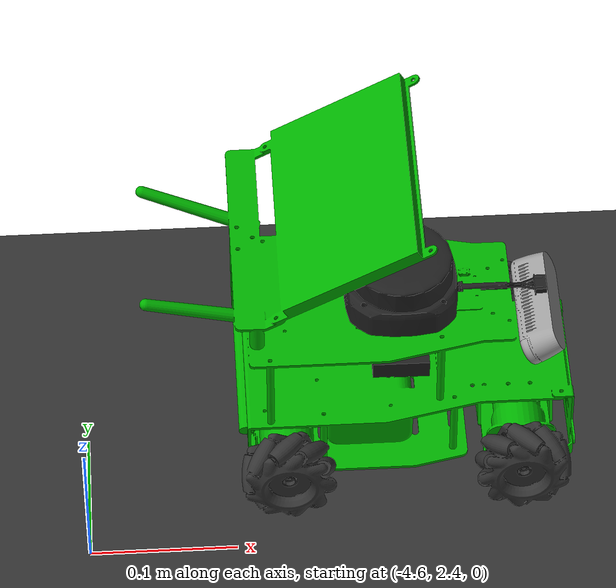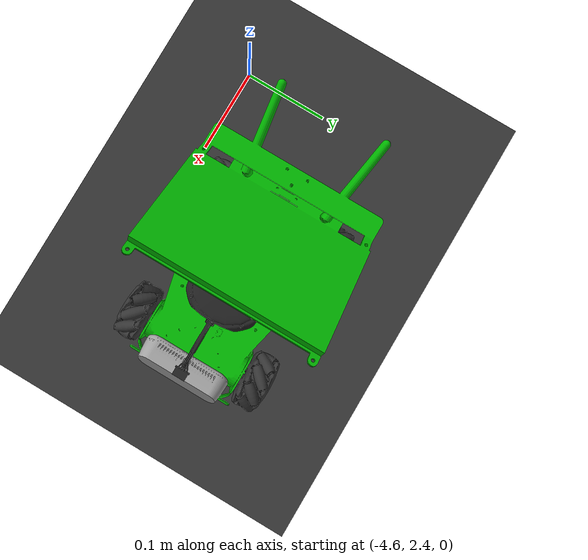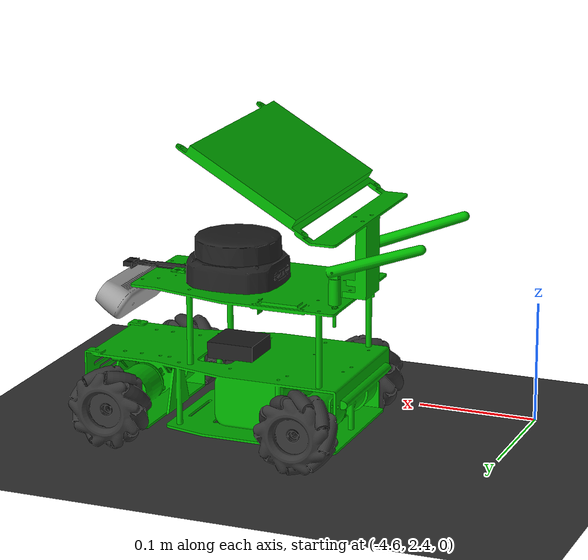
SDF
<sdf version="1.9">
 <world name="default">
  <model name="ground_plane">
   <static>true</static>
   <link name="link">
    <collision name="collision">
     <geometry><plane><normal>0 0 1</normal><size>10 10</size></plane></geometry>
    </collision>
    <visual name="visual">
     <geometry><plane><normal>0 0 1</normal><size>10 10</size></plane></geometry>
     <material>
      <ambient>0.2 0.2 0.2 1</ambient>
      <diffuse>0.2 0.2 0.2 1</diffuse>
      <specular>0.2 0.2 0.2 1</specular>
     </material>
    </visual>
    <inertial>
     <mass>1</mass>
     <inertia><ixx>1</ixx><ixy>0</ixy><ixz>0</ixz><iyy>1</iyy><iyz>0</iyz><izz>1</izz></inertia>
    </inertial>
   </link>
  </model>
  <model name="rosmaster_x3_1_1_1">
   <link name="base_footprint">
    <inertial>
     <pose>-0.02762684124386252 0 0.1368573036006547 0 0 0</pose>
     <mass>4.887999999999999</mass>
     <inertia>
      <ixx>0.02688366396477616</ixx>
      <ixy>0</ixy>
      <ixz>0.00075297530245550803</ixz>
      <iyy>0.052121897096815251</iyy>
      <iyz>0</iyz>
      <izz>0.047371939139955743</izz>
     </inertia>
    </inertial>
    <collision name="base_footprint_fixed_joint_lump__base_link_collision">
     <pose>-0.031 0 0.13925 0 0 0</pose>
     <geometry><box><size>0.3 0.1386 0.19725</size></box></geometry>
    </collision>
    <visual name="base_footprint_fixed_joint_lump__base_link_visual">
     <pose>0 0 0.0325 0 0 0</pose>
     <geometry>
      <mesh>
       <scale>1 1 1</scale>
       <uri>file:///home/mo/yahboom_ws/install/yahboom_rosmaster_description/share/yahboom_rosmaster_description/meshes/rosmaster_x3/visual/base_link_X3.STL</uri>
      </mesh>
     </geometry>
     <material><ambient>0 0.7 0 1</ambient><diffuse>0 0.7 0 1</diffuse><specular>0 0.7 0 1</specular></material>
    </visual>
    <visual name="base_footprint_fixed_joint_lump__cam_1_link_visual_1">
     <pose>0.105 0 0.0825 1.070796326794896 -5.551115123125783e-17 1.570796326794896</pose>
     <geometry>
      <mesh>
       <scale>1 1 1</scale>
       <uri>file:///home/mo/yahboom_ws/install/yahboom_rosmaster_description/share/yahboom_rosmaster_description/meshes/intel_realsense/visual/d435.stl</uri>
      </mesh>
     </geometry>
     <material><diffuse>0.625 0.625 0.625 1</diffuse><ambient>0.625 0.625 0.625 1</ambient></material>
    </visual>
    <visual name="base_footprint_fixed_joint_lump__imu_link_visual_2">
     <pose>0 0 0.0385 0 0 0</pose>
     <geometry><box><size>0.03899 0.03785 0.01338</size></box></geometry>
     <material><diffuse>0.125 0.125 0.125 1</diffuse><ambient>0.125 0.125 0.125 1</ambient></material>
    </visual>
    <visual name="base_footprint_fixed_joint_lump__laser_frame_visual_3">
     <pose>0 0 0.115 -1.570796326794896 0 0</pose>
     <geometry>
      <mesh>
       <scale>0.001 0.001 0.001</scale>
       <uri>file:///home/mo/yahboom_ws/install/yahboom_rosmaster_description/share/yahboom_rosmaster_description/meshes/rplidar/rplidar_s2.stl</uri>
      </mesh>
     </geometry>
     <material><diffuse>0.125 0.125 0.125 1</diffuse><ambient>0.125 0.125 0.125 1</ambient></material>
    </visual>
    <sensor name="cam_1" type="rgbd_camera">
     <camera>
      <horizontal_fov>1.5184</horizontal_fov>
      <image><width>424</width><height>240</height></image>
      <clip><near>0.050000000000000003</near><far>1.5</far></clip>
     </camera>
     <always_on>true</always_on>
     <topic>cam_1</topic>
     <update_rate>2</update_rate>
     <visualize>true</visualize>
     <pose>0.105 0 0.0825 0 -0.5 0</pose>
     <gz_frame_id>cam_1_depth_optical_frame</gz_frame_id>
    </sensor>
    <sensor name="imu_sensor" type="imu">
     <topic>imu/data</topic>
     <update_rate>15</update_rate>
     <always_on>true</always_on>
     <visualize>false</visualize>
     <pose>0 0 0.0385 0 -0 0</pose>
     <gz_frame_id>imu_link</gz_frame_id>
    </sensor>
    <sensor name="lidar_sensor" type="gpu_lidar">
     <topic>scan</topic>
     <update_rate>10</update_rate>
     <always_on>true</always_on>
     <visualize>false</visualize>
     <ray>
      <scan>
       <horizontal>
        <samples>720</samples>
        <resolution>1</resolution>
        <min_angle>-3.1415899999999999</min_angle>
        <max_angle>3.1415899999999999</max_angle>
       </horizontal>
       <vertical>
        <samples>1</samples>
        <resolution>1</resolution>
        <min_angle>0</min_angle>
        <max_angle>0</max_angle>
       </vertical>
      </scan>
      <range><min>0.20000000000000001</min><max>30</max><resolution>0.012999999999999999</resolution></range>
     </ray>
     <pose>0 0 0.115 0 -0 0</pose>
     <gz_frame_id>laser_frame</gz_frame_id>
    </sensor>
   </link>
   <joint name="back_left_wheel_joint" type="revolute">
    <pose relative_to="base_footprint">-0.08 0.07450000000000001 0 0 0 0</pose>
    <parent>base_footprint</parent>
    <child>back_left_wheel_link</child>
    <axis>
     <xyz>0 1 0</xyz>
     <limit><lower>-10000000000000000</lower><upper>10000000000000000</upper></limit>
     <dynamics><spring_reference>0</spring_reference><spring_stiffness>0</spring_stiffness></dynamics>
    </axis>
   </joint>
   <link name="back_left_wheel_link">
    <pose relative_to="back_left_wheel_joint">0 0 0 0 0 0</pose>
    <inertial>
     <mass>9.0999999999999996</mass>
     <inertia>
      <ixx>0.0031037900833333328</ixx>
      <ixy>0</ixy>
      <ixz>0</ixz>
      <iyy>0.0048059375000000003</iyy>
      <iyz>0</iyz>
      <izz>0.0031037900833333328</izz>
     </inertia>
    </inertial>
    <collision name="back_left_wheel_link_collision">
     <pose>0 0 0 1.570796326794896 0 0</pose>
     <geometry><cylinder><length>0.0304</length><radius>0.032500000000000001</radius></cylinder></geometry>
    </collision>
    <visual name="back_left_wheel_link_visual">
     <pose>0 0 0 1.570796326794896 0 0</pose>
     <geometry>
      <mesh>
       <scale>1 1 1</scale>
       <uri>file:///home/mo/yahboom_ws/install/yahboom_rosmaster_description/share/yahboom_rosmaster_description/meshes/rosmaster_x3/visual/back_left_wheel_X3.STL</uri>
      </mesh>
     </geometry>
     <material>
      <ambient>0.2 0.2 0.2 1</ambient>
      <diffuse>0.2 0.2 0.2 1</diffuse>
      <specular>0.2 0.2 0.2 1</specular>
      <emissive>0 0 0 0</emissive>
     </material>
    </visual>
    <surface><friction><ode><mu>1.0</mu><mu2>0.0</mu2></ode></friction></surface>
   </link>
   <joint name="back_right_wheel_joint" type="revolute">
    <pose relative_to="base_footprint">-0.08 -0.07450000000000001 0 0 0 0</pose>
    <parent>base_footprint</parent>
    <child>back_right_wheel_link</child>
    <axis>
     <xyz>0 1 0</xyz>
     <limit><lower>-10000000000000000</lower><upper>10000000000000000</upper></limit>
     <dynamics><spring_reference>0</spring_reference><spring_stiffness>0</spring_stiffness></dynamics>
    </axis>
   </joint>
   <link name="back_right_wheel_link">
    <pose relative_to="back_right_wheel_joint">0 0 0 0 0 0</pose>
    <inertial>
     <mass>9.0999999999999996</mass>
     <inertia>
      <ixx>0.0031037900833333328</ixx>
      <ixy>0</ixy>
      <ixz>0</ixz>
      <iyy>0.0048059375000000003</iyy>
      <iyz>0</iyz>
      <izz>0.0031037900833333328</izz>
     </inertia>
    </inertial>
    <collision name="back_right_wheel_link_collision">
     <pose>0 0 0 1.570796326794896 0 0</pose>
     <geometry><cylinder><length>0.0304</length><radius>0.032500000000000001</radius></cylinder></geometry>
    </collision>
    <visual name="back_right_wheel_link_visual">
     <pose>0 0 0 1.570796326794896 0 0</pose>
     <geometry>
      <mesh>
       <scale>1 1 1</scale>
       <uri>file:///home/mo/yahboom_ws/install/yahboom_rosmaster_description/share/yahboom_rosmaster_description/meshes/rosmaster_x3/visual/back_right_wheel_X3.STL</uri>
      </mesh>
     </geometry>
     <material>
      <ambient>0.2 0.2 0.2 1</ambient>
      <diffuse>0.2 0.2 0.2 1</diffuse>
      <specular>0.2 0.2 0.2 1</specular>
      <emissive>0 0 0 0</emissive>
     </material>
    </visual>
    <surface><friction><ode><mu>1.0</mu><mu2>0.0</mu2></ode></friction></surface>
   </link>
   <joint name="front_left_wheel_joint" type="revolute">
    <pose relative_to="base_footprint">0.08 0.07450000000000001 0 0 0 0</pose>
    <parent>base_footprint</parent>
    <child>front_left_wheel_link</child>
    <axis>
     <xyz>0 1 0</xyz>
     <limit><lower>-10000000000000000</lower><upper>10000000000000000</upper></limit>
     <dynamics><spring_reference>0</spring_reference><spring_stiffness>0</spring_stiffness></dynamics>
    </axis>
   </joint>
   <link name="front_left_wheel_link">
    <pose relative_to="front_left_wheel_joint">0 0 0 0 0 0</pose>
    <inertial>
     <mass>9.0999999999999996</mass>
     <inertia>
      <ixx>0.0031037900833333328</ixx>
      <ixy>0</ixy>
      <ixz>0</ixz>
      <iyy>0.0048059375000000003</iyy>
      <iyz>0</iyz>
      <izz>0.0031037900833333328</izz>
     </inertia>
    </inertial>
    <collision name="front_left_wheel_link_collision">
     <pose>0 0 0 1.570796326794896 0 0</pose>
     <geometry><cylinder><length>0.0304</length><radius>0.032500000000000001</radius></cylinder></geometry>
    </collision>
    <visual name="front_left_wheel_link_visual">
     <pose>0 0 0 1.570796326794896 0 0</pose>
     <geometry>
      <mesh>
       <scale>1 1 1</scale>
       <uri>file:///home/mo/yahboom_ws/install/yahboom_rosmaster_description/share/yahboom_rosmaster_description/meshes/rosmaster_x3/visual/front_left_wheel_X3.STL</uri>
      </mesh>
     </geometry>
     <material>
      <ambient>0.2 0.2 0.2 1</ambient>
      <diffuse>0.2 0.2 0.2 1</diffuse>
      <specular>0.2 0.2 0.2 1</specular>
      <emissive>0 0 0 0</emissive>
     </material>
    </visual>
    <surface><friction><ode><mu>1.0</mu><mu2>0.0</mu2></ode></friction></surface>
   </link>
   <joint name="front_right_wheel_joint" type="revolute">
    <pose relative_to="base_footprint">0.08 -0.07450000000000001 0 0 0 0</pose>
    <parent>base_footprint</parent>
    <child>front_right_wheel_link</child>
    <axis>
     <xyz>0 1 0</xyz>
     <limit><lower>-10000000000000000</lower><upper>10000000000000000</upper></limit>
     <dynamics><spring_reference>0</spring_reference><spring_stiffness>0</spring_stiffness></dynamics>
    </axis>
   </joint>
   <link name="front_right_wheel_link">
    <pose relative_to="front_right_wheel_joint">0 0 0 0 0 0</pose>
    <inertial>
     <mass>9.0999999999999996</mass>
     <inertia>
      <ixx>0.0031037900833333328</ixx>
      <ixy>0</ixy>
      <ixz>0</ixz>
      <iyy>0.0048059375000000003</iyy>
      <iyz>0</iyz>
      <izz>0.0031037900833333328</izz>
     </inertia>
    </inertial>
    <collision name="front_right_wheel_link_collision">
     <pose>0 0 0 1.570796326794896 0 0</pose>
     <geometry><cylinder><length>0.0304</length><radius>0.032500000000000001</radius></cylinder></geometry>
    </collision>
    <visual name="front_right_wheel_link_visual">
     <pose>0 0 0 1.570796326794896 0 0</pose>
     <geometry>
      <mesh>
       <scale>1 1 1</scale>
       <uri>file:///home/mo/yahboom_ws/install/yahboom_rosmaster_description/share/yahboom_rosmaster_description/meshes/rosmaster_x3/visual/front_right_wheel_X3.STL</uri>
      </mesh>
     </geometry>
     <material>
      <ambient>0.2 0.2 0.2 1</ambient>
      <diffuse>0.2 0.2 0.2 1</diffuse>
      <specular>0.2 0.2 0.2 1</specular>
      <emissive>0 0 0 0</emissive>
     </material>
    </visual>
    <surface><friction><ode><mu>1.0</mu><mu2>0.0</mu2></ode></friction></surface>
   </link>
   <plugin name="gz::sim::systems::VelocityControl" filename="gz-sim-velocity-control-system">
    <topic>mecanum_drive_controller/cmd_vel</topic>
    <initial_linear>0 0 0</initial_linear>
    <initial_angular>0 0 0</initial_angular>
   </plugin>
   <plugin name="gz_ros2_control::GazeboSimROS2ControlPlugin" filename="gz_ros2_control-system">
    <parameters>/home/mo/yahboom_ws/install/yahboom_rosmaster_description/share/yahboom_rosmaster_description/config/rosmaster_x3/ros2_controllers.yaml</parameters>
    <ros><remapping>/controller_manager/robot_description:=/robot_description</remapping></ros>
   </plugin>
   <frame name="cam_1_color_optical_joint" attached_to="cam_1_color_frame">
    <pose>0 0 0 -1.5708 -0 -1.5708</pose>
   </frame>
   <frame name="cam_1_color_optical_frame" attached_to="cam_1_color_optical_joint"/>
   <frame name="cam_1_color_joint" attached_to="cam_1_link"><pose>0 0.015 0 0 -0 0</pose></frame>
   <frame name="cam_1_color_frame" attached_to="cam_1_color_joint"/>
   <frame name="cam_1_depth_optical_joint" attached_to="cam_1_depth_frame">
    <pose>0 0 0 -1.5708 -0 -1.5708</pose>
   </frame>
   <frame name="cam_1_depth_optical_frame" attached_to="cam_1_depth_optical_joint"/>
   <frame name="cam_1_depth_joint" attached_to="cam_1_link"/>
   <frame name="cam_1_depth_frame" attached_to="cam_1_depth_joint"/>
   <frame name="cam_1_infra1_optical_joint" attached_to="cam_1_infra1_frame">
    <pose>0 0 0 -1.5708 -0 -1.5708</pose>
   </frame>
   <frame name="cam_1_infra1_optical_frame" attached_to="cam_1_infra1_optical_joint"/>
   <frame name="cam_1_infra1_joint" attached_to="cam_1_link"/>
   <frame name="cam_1_infra1_frame" attached_to="cam_1_infra1_joint"/>
   <frame name="cam_1_infra2_optical_joint" attached_to="cam_1_infra2_frame">
    <pose>0 0 0 -1.5708 -0 -1.5708</pose>
   </frame>
   <frame name="cam_1_infra2_optical_frame" attached_to="cam_1_infra2_optical_joint"/>
   <frame name="cam_1_infra2_joint" attached_to="cam_1_link"><pose>0 -0.05 0 0 -0 0</pose></frame>
   <frame name="cam_1_infra2_frame" attached_to="cam_1_infra2_joint"/>
   <frame name="cam_1_joint" attached_to="base_link"><pose>0.105 0 0.05 0 -0.5 0</pose></frame>
   <frame name="cam_1_link" attached_to="cam_1_joint"/>
   <frame name="imu_joint" attached_to="base_link"><pose>0 0 0.006 0 -0 0</pose></frame>
   <frame name="imu_link" attached_to="imu_joint"/>
   <frame name="laser_frame_joint" attached_to="base_link"><pose>0 0 0.0825 0 -0 0</pose></frame>
   <frame name="laser_frame" attached_to="laser_frame_joint"/>
   <frame name="base_joint" attached_to="base_footprint"><pose>0 0 0.0325 0 -0 0</pose></frame>
   <frame name="base_link" attached_to="base_joint"/>
   <pose>-4.38297 2.51017 0.032499 -0 -0 -0</pose>
   <static>false</static>
  </model>
 </world>
</sdf>
